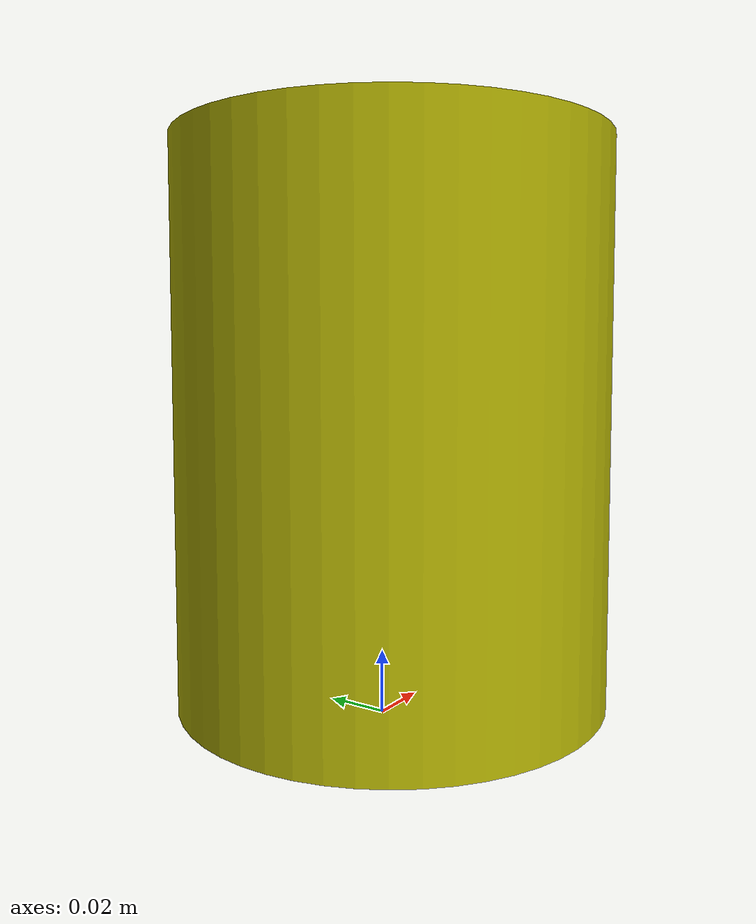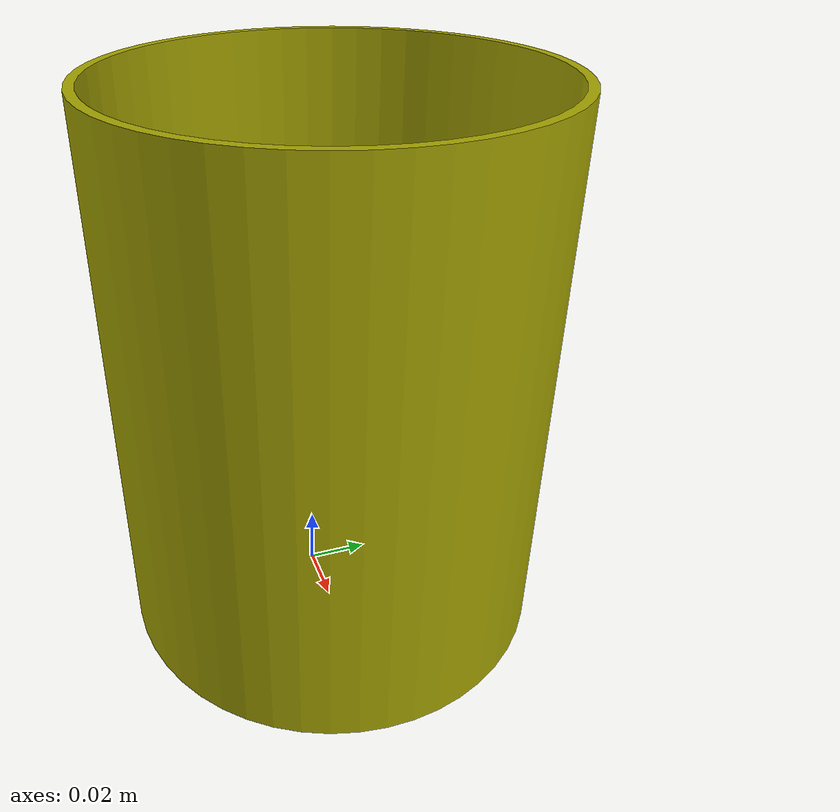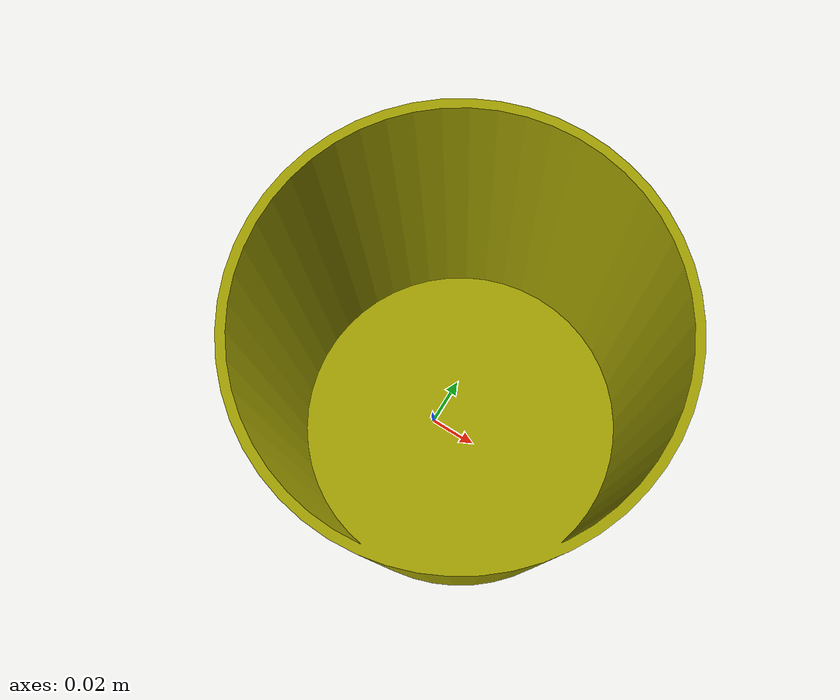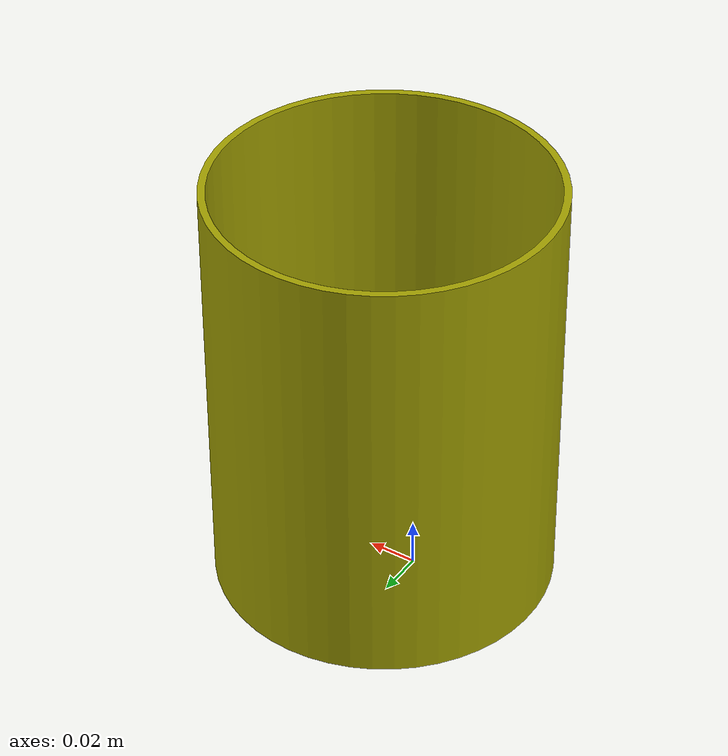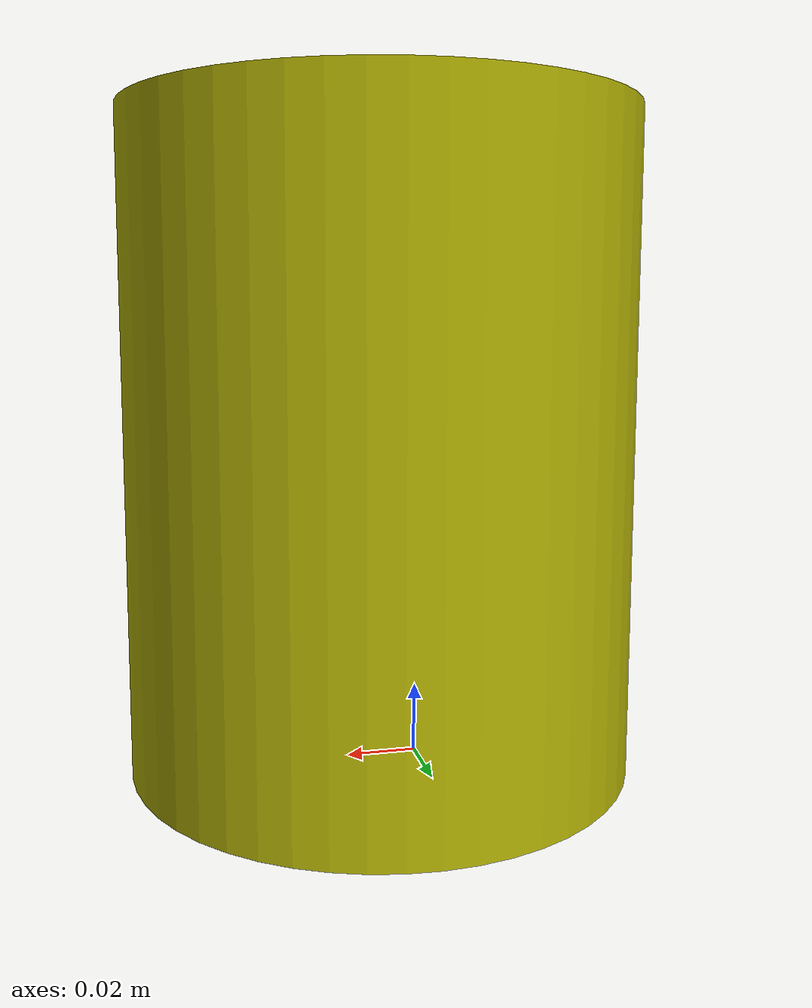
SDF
<?xml version="1.0" ?>
<sdf version="1.5">
  <model name="yellow_bin">
    <link name="link">
      <inertial>
      <pose>0 0 0.0015 0 0 0</pose>
        <mass>0.1</mass>
	  <inertia>
	    <ixx>0.000250308</ixx>
	    <ixy>0.0</ixy>
	    <ixz>0.0</ixz>
	    <iyy>0.000250308</iyy>
	    <iyz>0.0</iyz>
	    <izz>0.0004802</izz>
	  </inertia>
      </inertial>
      <collision name="collision">
        <pose>0 0 0.0015 0 0 0</pose>
        <geometry>
          <cylinder>
            <radius>0.07</radius>
            <length>0.003</length>
          </cylinder>
        </geometry>
      </collision>
      <visual name="visual">
        <geometry>
          <mesh>
            <uri>file://meshes/yellow_bin.dae</uri>
          </mesh>
        </geometry>
      </visual>
    </link>
  </model>
</sdf>
